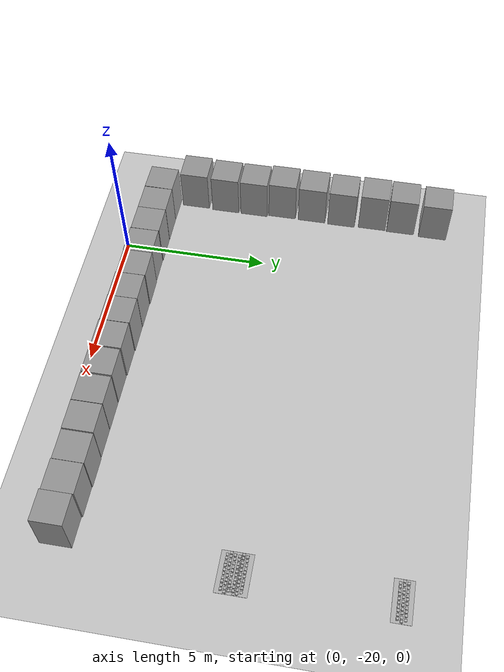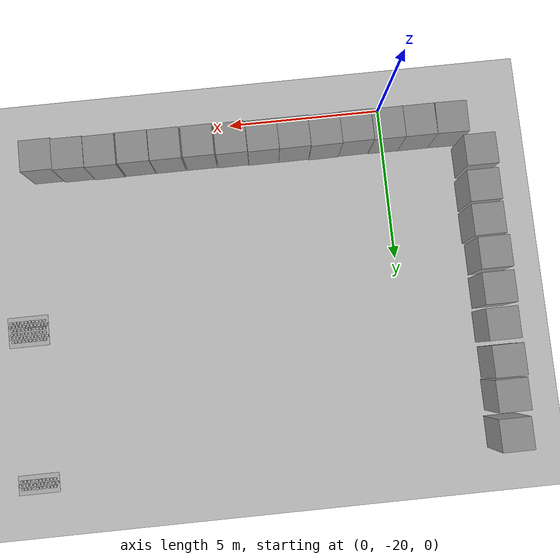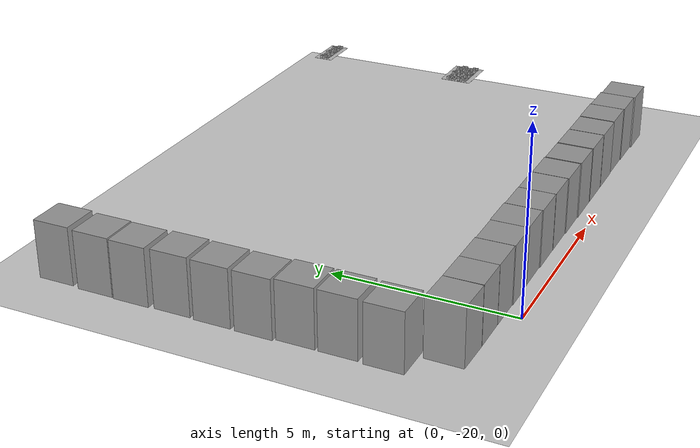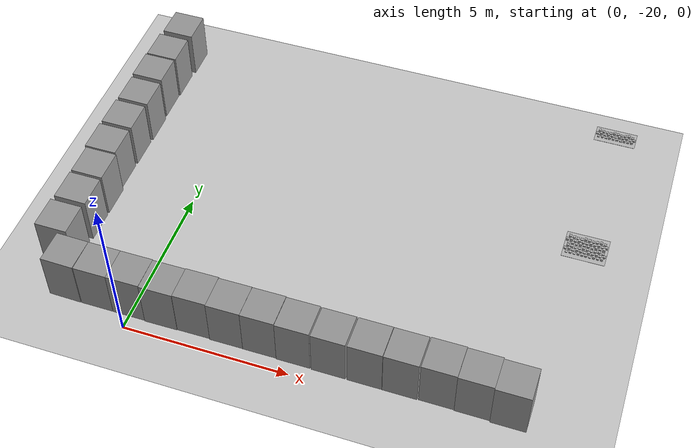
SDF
<sdf version="1.6">
 <world name="default">
  <model name="ground_plane">
   <static>1</static>
   <link name="link">
    <collision name="collision">
     <geometry><plane><normal>0 0 1</normal><size>100 100</size></plane></geometry>
     <surface><friction><ode><mu>100</mu><mu2>50</mu2></ode></friction></surface>
    </collision>
    <visual name="visual">
     <cast_shadows>0</cast_shadows>
     <geometry><plane><normal>0 0 1</normal><size>100 100</size></plane></geometry>
     <material>
      <script><uri>file://media/materials/scripts/gazebo.material</uri><name>Gazebo/Grey</name></script>
     </material>
    </visual>
   </link>
  </model>
  <model name="frc2016_roughterrain_clone_0_clone_clone_3_clone">
   <static>1</static>
   <link name="link">
    <visual name="platform">
     <pose>0 0 0.08269 0 -0 0</pose>
     <geometry><box><size>1.27 0.5969 0.003175</size></box></geometry>
    </visual>
    <collision name="platform">
     <pose>0 0 0.08269 0 -0 0</pose>
     <geometry><box><size>1.27 0.5969 0.003175</size></box></geometry>
    </collision>
    <visual name="row1_block1_sm">
     <pose>0.51435 0.1143 0.09698 0 -0 0</pose>
     <geometry><box><size>0.0762 0.0762 0.0254</size></box></geometry>
    </visual>
    <collision name="row1_block1_sm">
     <pose>0.51435 0.1143 0.09698 0 -0 0</pose>
     <geometry><box><size>0.0762 0.0762 0.0254</size></box></geometry>
    </collision>
    <visual name="row1_block2_lg">
     <pose>0.40005 0.1143 0.12238 0 -0 0</pose>
     <geometry><box><size>0.0762 0.0762 0.0762</size></box></geometry>
    </visual>
    <collision name="row1_block2_lg">
     <pose>0.40005 0.1143 0.12238 0 -0 0</pose>
     <geometry><box><size>0.0762 0.0762 0.0762</size></box></geometry>
    </collision>
    <visual name="row1_block3_md">
     <pose>0.28575 0.1143 0.10968 0 -0 0</pose>
     <geometry><box><size>0.0762 0.0762 0.0508</size></box></geometry>
    </visual>
    <collision name="row1_block3_md">
     <pose>0.28575 0.1143 0.10968 0 -0 0</pose>
     <geometry><box><size>0.0762 0.0762 0.0508</size></box></geometry>
    </collision>
    <visual name="row1_block4_sm">
     <pose>0.17145 0.1143 0.09698 0 -0 0</pose>
     <geometry><box><size>0.0762 0.0762 0.0254</size></box></geometry>
    </visual>
    <collision name="row1_block4_sm">
     <pose>0.17145 0.1143 0.09698 0 -0 0</pose>
     <geometry><box><size>0.0762 0.0762 0.0254</size></box></geometry>
    </collision>
    <visual name="row1_block5_md">
     <pose>0.05715 0.1143 0.10968 0 -0 0</pose>
     <geometry><box><size>0.0762 0.0762 0.0508</size></box></geometry>
    </visual>
    <collision name="row1_block5_md">
     <pose>0.05715 0.1143 0.10968 0 -0 0</pose>
     <geometry><box><size>0.0762 0.0762 0.0508</size></box></geometry>
    </collision>
    <visual name="row1_block6_lg">
     <pose>-0.05715 0.1143 0.12238 0 -0 0</pose>
     <geometry><box><size>0.0762 0.0762 0.0762</size></box></geometry>
    </visual>
    <collision name="row1_block6_lg">
     <pose>-0.05715 0.1143 0.12238 0 -0 0</pose>
     <geometry><box><size>0.0762 0.0762 0.0762</size></box></geometry>
    </collision>
    <visual name="row1_block7_sm">
     <pose>-0.17145 0.1143 0.09698 0 -0 0</pose>
     <geometry><box><size>0.0762 0.0762 0.0254</size></box></geometry>
    </visual>
    <collision name="row1_block7_sm">
     <pose>-0.17145 0.1143 0.09698 0 -0 0</pose>
     <geometry><box><size>0.0762 0.0762 0.0254</size></box></geometry>
    </collision>
    <visual name="row1_block8_sm">
     <pose>-0.28575 0.1143 0.09698 0 -0 0</pose>
     <geometry><box><size>0.0762 0.0762 0.0254</size></box></geometry>
    </visual>
    <collision name="row1_block8_sm">
     <pose>-0.28575 0.1143 0.09698 0 -0 0</pose>
     <geometry><box><size>0.0762 0.0762 0.0254</size></box></geometry>
    </collision>
    <visual name="row1_block9_md">
     <pose>-0.40005 0.1143 0.10968 0 -0 0</pose>
     <geometry><box><size>0.0762 0.0762 0.0508</size></box></geometry>
    </visual>
    <collision name="row1_block9_md">
     <pose>-0.40005 0.1143 0.10968 0 -0 0</pose>
     <geometry><box><size>0.0762 0.0762 0.0508</size></box></geometry>
    </collision>
    <visual name="row1_block10_lg">
     <pose>-0.51435 0.1143 0.12238 0 -0 0</pose>
     <geometry><box><size>0.0762 0.0762 0.0762</size></box></geometry>
    </visual>
    <collision name="row1_block10_lg">
     <pose>-0.51435 0.1143 0.12238 0 -0 0</pose>
     <geometry><box><size>0.0762 0.0762 0.0762</size></box></geometry>
    </collision>
    <visual name="row2_block1_md">
     <pose>0.5715 0 0.10968 0 -0 0</pose>
     <geometry><box><size>0.0762 0.0762 0.0508</size></box></geometry>
    </visual>
    <collision name="row2_block1_md">
     <pose>0.5715 0 0.10968 0 -0 0</pose>
     <geometry><box><size>0.0762 0.0762 0.0508</size></box></geometry>
    </collision>
    <visual name="row2_block2_sm">
     <pose>0.4572 0 0.09698 0 -0 0</pose>
     <geometry><box><size>0.0762 0.0762 0.0254</size></box></geometry>
    </visual>
    <collision name="row2_block2_sm">
     <pose>0.4572 0 0.09698 0 -0 0</pose>
     <geometry><box><size>0.0762 0.0762 0.0254</size></box></geometry>
    </collision>
    <visual name="row2_block3_lg">
     <pose>0.3429 0 0.12238 0 -0 0</pose>
     <geometry><box><size>0.0762 0.0762 0.0762</size></box></geometry>
    </visual>
    <collision name="row2_block3_lg">
     <pose>0.3429 0 0.12238 0 -0 0</pose>
     <geometry><box><size>0.0762 0.0762 0.0762</size></box></geometry>
    </collision>
    <visual name="row2_block4_md">
     <pose>0.2286 0 0.10968 0 -0 0</pose>
     <geometry><box><size>0.0762 0.0762 0.0508</size></box></geometry>
    </visual>
    <collision name="row2_block4_md">
     <pose>0.2286 0 0.10968 0 -0 0</pose>
     <geometry><box><size>0.0762 0.0762 0.0508</size></box></geometry>
    </collision>
    <visual name="row2_block5_lg">
     <pose>0.1143 0 0.12238 0 -0 0</pose>
     <geometry><box><size>0.0762 0.0762 0.0762</size></box></geometry>
    </visual>
    <collision name="row2_block5_lg">
     <pose>0.1143 0 0.12238 0 -0 0</pose>
     <geometry><box><size>0.0762 0.0762 0.0762</size></box></geometry>
    </collision>
    <visual name="row2_block6_sm">
     <pose>0 0 0.09698 0 -0 0</pose>
     <geometry><box><size>0.0762 0.0762 0.0254</size></box></geometry>
    </visual>
    <collision name="row2_block6_sm">
     <pose>0 0 0.09698 0 -0 0</pose>
     <geometry><box><size>0.0762 0.0762 0.0254</size></box></geometry>
    </collision>
    <visual name="row2_block7_md">
     <pose>-0.1143 0 0.10968 0 -0 0</pose>
     <geometry><box><size>0.0762 0.0762 0.0508</size></box></geometry>
    </visual>
    <collision name="row2_block7_md">
     <pose>-0.1143 0 0.10968 0 -0 0</pose>
     <geometry><box><size>0.0762 0.0762 0.0508</size></box></geometry>
    </collision>
    <visual name="row2_block8_lg">
     <pose>-0.2286 0 0.12238 0 -0 0</pose>
     <geometry><box><size>0.0762 0.0762 0.0762</size></box></geometry>
    </visual>
    <collision name="row2_block8_lg">
     <pose>-0.2286 0 0.12238 0 -0 0</pose>
     <geometry><box><size>0.0762 0.0762 0.0762</size></box></geometry>
    </collision>
    <visual name="row2_block9_sm">
     <pose>-0.3429 0 0.09698 0 -0 0</pose>
     <geometry><box><size>0.0762 0.0762 0.0254</size></box></geometry>
    </visual>
    <collision name="row2_block9_sm">
     <pose>-0.3429 0 0.09698 0 -0 0</pose>
     <geometry><box><size>0.0762 0.0762 0.0254</size></box></geometry>
    </collision>
    <visual name="row2_block10_lg">
     <pose>-0.4572 0 0.12238 0 -0 0</pose>
     <geometry><box><size>0.0762 0.0762 0.0762</size></box></geometry>
    </visual>
    <collision name="row2_block10_lg">
     <pose>-0.4572 0 0.12238 0 -0 0</pose>
     <geometry><box><size>0.0762 0.0762 0.0762</size></box></geometry>
    </collision>
    <visual name="row2_block11_md">
     <pose>-0.5715 0 0.10968 0 -0 0</pose>
     <geometry><box><size>0.0762 0.0762 0.0508</size></box></geometry>
    </visual>
    <collision name="row2_block11_md">
     <pose>-0.5715 0 0.10968 0 -0 0</pose>
     <geometry><box><size>0.0762 0.0762 0.0508</size></box></geometry>
    </collision>
    <visual name="row3_block1_lg">
     <pose>0.51435 -0.1143 0.12238 0 -0 0</pose>
     <geometry><box><size>0.0762 0.0762 0.0762</size></box></geometry>
    </visual>
    <collision name="row3_block1_lg">
     <pose>0.51435 -0.1143 0.12238 0 -0 0</pose>
     <geometry><box><size>0.0762 0.0762 0.0762</size></box></geometry>
    </collision>
    <visual name="row3_block2_md">
     <pose>0.40005 -0.1143 0.10968 0 -0 0</pose>
     <geometry><box><size>0.0762 0.0762 0.0508</size></box></geometry>
    </visual>
    <collision name="row3_block2_md">
     <pose>0.40005 -0.1143 0.10968 0 -0 0</pose>
     <geometry><box><size>0.0762 0.0762 0.0508</size></box></geometry>
    </collision>
    <visual name="row3_block3_lg">
     <pose>0.28575 -0.1143 0.12238 0 -0 0</pose>
     <geometry><box><size>0.0762 0.0762 0.0762</size></box></geometry>
    </visual>
    <collision name="row3_block3_lg">
     <pose>0.28575 -0.1143 0.12238 0 -0 0</pose>
     <geometry><box><size>0.0762 0.0762 0.0762</size></box></geometry>
    </collision>
    <visual name="row3_block4_sm">
     <pose>0.17145 -0.1143 0.09698 0 -0 0</pose>
     <geometry><box><size>0.0762 0.0762 0.0254</size></box></geometry>
    </visual>
    <collision name="row3_block4_sm">
     <pose>0.17145 -0.1143 0.09698 0 -0 0</pose>
     <geometry><box><size>0.0762 0.0762 0.0254</size></box></geometry>
    </collision>
    <visual name="row3_block5_md">
     <pose>0.05715 -0.1143 0.10968 0 -0 0</pose>
     <geometry><box><size>0.0762 0.0762 0.0508</size></box></geometry>
    </visual>
    <collision name="row3_block5_md">
     <pose>0.05715 -0.1143 0.10968 0 -0 0</pose>
     <geometry><box><size>0.0762 0.0762 0.0508</size></box></geometry>
    </collision>
    <visual name="row3_block6_md">
     <pose>-0.05715 -0.1143 0.10968 0 -0 0</pose>
     <geometry><box><size>0.0762 0.0762 0.0508</size></box></geometry>
    </visual>
    <collision name="row3_block6_md">
     <pose>-0.05715 -0.1143 0.10968 0 -0 0</pose>
     <geometry><box><size>0.0762 0.0762 0.0508</size></box></geometry>
    </collision>
    <visual name="row3_block7_lg">
     <pose>-0.17145 -0.1143 0.12238 0 -0 0</pose>
     <geometry><box><size>0.0762 0.0762 0.0762</size></box></geometry>
    </visual>
    <collision name="row3_block7_lg">
     <pose>-0.17145 -0.1143 0.12238 0 -0 0</pose>
     <geometry><box><size>0.0762 0.0762 0.0762</size></box></geometry>
    </collision>
    <visual name="row3_block8_sm">
     <pose>-0.28575 -0.1143 0.09698 0 -0 0</pose>
     <geometry><box><size>0.0762 0.0762 0.0254</size></box></geometry>
    </visual>
    <collision name="row3_block8_sm">
     <pose>-0.28575 -0.1143 0.09698 0 -0 0</pose>
     <geometry><box><size>0.0762 0.0762 0.0254</size></box></geometry>
    </collision>
    <visual name="row3_block9_md">
     <pose>-0.40005 -0.1143 0.10968 0 -0 0</pose>
     <geometry><box><size>0.0762 0.0762 0.0508</size></box></geometry>
    </visual>
    <collision name="row3_block9_md">
     <pose>-0.40005 -0.1143 0.10968 0 -0 0</pose>
     <geometry><box><size>0.0762 0.0762 0.0508</size></box></geometry>
    </collision>
    <visual name="row3_block10_sm">
     <pose>-0.51435 -0.1143 0.09698 0 -0 0</pose>
     <geometry><box><size>0.0762 0.0762 0.0254</size></box></geometry>
    </visual>
    <collision name="row3_block10_sm">
     <pose>-0.51435 -0.1143 0.09698 0 -0 0</pose>
     <geometry><box><size>0.0762 0.0762 0.0254</size></box></geometry>
    </collision>
   </link>
   <pose>11.9081 -9.01822 0.826533 0 -0 0</pose>
  </model>
  <model name="frc2016_roughterrain_clone_0_clone_clone_3_clone_1_clone_0_clone_clone_2_clone_clone_1">
   <static>1</static>
   <link name="link">
    <visual name="platform">
     <pose>0 0 0.08269 0 -0 0</pose>
     <geometry><box><size>1.27 0.5969 0.003175</size></box></geometry>
    </visual>
    <collision name="platform">
     <pose>0 0 0.08269 0 -0 0</pose>
     <geometry><box><size>1.27 0.5969 0.003175</size></box></geometry>
    </collision>
    <visual name="row1_block1_sm">
     <pose>0.51435 0.1143 0.09698 0 -0 0</pose>
     <geometry><box><size>0.0762 0.0762 0.0254</size></box></geometry>
    </visual>
    <collision name="row1_block1_sm">
     <pose>0.51435 0.1143 0.09698 0 -0 0</pose>
     <geometry><box><size>0.0762 0.0762 0.0254</size></box></geometry>
    </collision>
    <visual name="row1_block2_lg">
     <pose>0.40005 0.1143 0.12238 0 -0 0</pose>
     <geometry><box><size>0.0762 0.0762 0.0762</size></box></geometry>
    </visual>
    <collision name="row1_block2_lg">
     <pose>0.40005 0.1143 0.12238 0 -0 0</pose>
     <geometry><box><size>0.0762 0.0762 0.0762</size></box></geometry>
    </collision>
    <visual name="row1_block3_md">
     <pose>0.28575 0.1143 0.10968 0 -0 0</pose>
     <geometry><box><size>0.0762 0.0762 0.0508</size></box></geometry>
    </visual>
    <collision name="row1_block3_md">
     <pose>0.28575 0.1143 0.10968 0 -0 0</pose>
     <geometry><box><size>0.0762 0.0762 0.0508</size></box></geometry>
    </collision>
    <visual name="row1_block4_sm">
     <pose>0.17145 0.1143 0.09698 0 -0 0</pose>
     <geometry><box><size>0.0762 0.0762 0.0254</size></box></geometry>
    </visual>
    <collision name="row1_block4_sm">
     <pose>0.17145 0.1143 0.09698 0 -0 0</pose>
     <geometry><box><size>0.0762 0.0762 0.0254</size></box></geometry>
    </collision>
    <visual name="row1_block5_md">
     <pose>0.05715 0.1143 0.10968 0 -0 0</pose>
     <geometry><box><size>0.0762 0.0762 0.0508</size></box></geometry>
    </visual>
    <collision name="row1_block5_md">
     <pose>0.05715 0.1143 0.10968 0 -0 0</pose>
     <geometry><box><size>0.0762 0.0762 0.0508</size></box></geometry>
    </collision>
    <visual name="row1_block6_lg">
     <pose>-0.05715 0.1143 0.12238 0 -0 0</pose>
     <geometry><box><size>0.0762 0.0762 0.0762</size></box></geometry>
    </visual>
    <collision name="row1_block6_lg">
     <pose>-0.05715 0.1143 0.12238 0 -0 0</pose>
     <geometry><box><size>0.0762 0.0762 0.0762</size></box></geometry>
    </collision>
    <visual name="row1_block7_sm">
     <pose>-0.17145 0.1143 0.09698 0 -0 0</pose>
     <geometry><box><size>0.0762 0.0762 0.0254</size></box></geometry>
    </visual>
    <collision name="row1_block7_sm">
     <pose>-0.17145 0.1143 0.09698 0 -0 0</pose>
     <geometry><box><size>0.0762 0.0762 0.0254</size></box></geometry>
    </collision>
    <visual name="row1_block8_sm">
     <pose>-0.28575 0.1143 0.09698 0 -0 0</pose>
     <geometry><box><size>0.0762 0.0762 0.0254</size></box></geometry>
    </visual>
    <collision name="row1_block8_sm">
     <pose>-0.28575 0.1143 0.09698 0 -0 0</pose>
     <geometry><box><size>0.0762 0.0762 0.0254</size></box></geometry>
    </collision>
    <visual name="row1_block9_md">
     <pose>-0.40005 0.1143 0.10968 0 -0 0</pose>
     <geometry><box><size>0.0762 0.0762 0.0508</size></box></geometry>
    </visual>
    <collision name="row1_block9_md">
     <pose>-0.40005 0.1143 0.10968 0 -0 0</pose>
     <geometry><box><size>0.0762 0.0762 0.0508</size></box></geometry>
    </collision>
    <visual name="row1_block10_lg">
     <pose>-0.51435 0.1143 0.12238 0 -0 0</pose>
     <geometry><box><size>0.0762 0.0762 0.0762</size></box></geometry>
    </visual>
    <collision name="row1_block10_lg">
     <pose>-0.51435 0.1143 0.12238 0 -0 0</pose>
     <geometry><box><size>0.0762 0.0762 0.0762</size></box></geometry>
    </collision>
    <visual name="row2_block1_md">
     <pose>0.5715 0 0.10968 0 -0 0</pose>
     <geometry><box><size>0.0762 0.0762 0.0508</size></box></geometry>
    </visual>
    <collision name="row2_block1_md">
     <pose>0.5715 0 0.10968 0 -0 0</pose>
     <geometry><box><size>0.0762 0.0762 0.0508</size></box></geometry>
    </collision>
    <visual name="row2_block2_sm">
     <pose>0.4572 0 0.09698 0 -0 0</pose>
     <geometry><box><size>0.0762 0.0762 0.0254</size></box></geometry>
    </visual>
    <collision name="row2_block2_sm">
     <pose>0.4572 0 0.09698 0 -0 0</pose>
     <geometry><box><size>0.0762 0.0762 0.0254</size></box></geometry>
    </collision>
    <visual name="row2_block3_lg">
     <pose>0.3429 0 0.12238 0 -0 0</pose>
     <geometry><box><size>0.0762 0.0762 0.0762</size></box></geometry>
    </visual>
    <collision name="row2_block3_lg">
     <pose>0.3429 0 0.12238 0 -0 0</pose>
     <geometry><box><size>0.0762 0.0762 0.0762</size></box></geometry>
    </collision>
    <visual name="row2_block4_md">
     <pose>0.2286 0 0.10968 0 -0 0</pose>
     <geometry><box><size>0.0762 0.0762 0.0508</size></box></geometry>
    </visual>
    <collision name="row2_block4_md">
     <pose>0.2286 0 0.10968 0 -0 0</pose>
     <geometry><box><size>0.0762 0.0762 0.0508</size></box></geometry>
    </collision>
    <visual name="row2_block5_lg">
     <pose>0.1143 0 0.12238 0 -0 0</pose>
     <geometry><box><size>0.0762 0.0762 0.0762</size></box></geometry>
    </visual>
    <collision name="row2_block5_lg">
     <pose>0.1143 0 0.12238 0 -0 0</pose>
     <geometry><box><size>0.0762 0.0762 0.0762</size></box></geometry>
    </collision>
    <visual name="row2_block6_sm">
     <pose>0 0 0.09698 0 -0 0</pose>
     <geometry><box><size>0.0762 0.0762 0.0254</size></box></geometry>
    </visual>
    <collision name="row2_block6_sm">
     <pose>0 0 0.09698 0 -0 0</pose>
     <geometry><box><size>0.0762 0.0762 0.0254</size></box></geometry>
    </collision>
    <visual name="row2_block7_md">
     <pose>-0.1143 0 0.10968 0 -0 0</pose>
     <geometry><box><size>0.0762 0.0762 0.0508</size></box></geometry>
    </visual>
    <collision name="row2_block7_md">
     <pose>-0.1143 0 0.10968 0 -0 0</pose>
     <geometry><box><size>0.0762 0.0762 0.0508</size></box></geometry>
    </collision>
    <visual name="row2_block8_lg">
     <pose>-0.2286 0 0.12238 0 -0 0</pose>
     <geometry><box><size>0.0762 0.0762 0.0762</size></box></geometry>
    </visual>
    <collision name="row2_block8_lg">
     <pose>-0.2286 0 0.12238 0 -0 0</pose>
     <geometry><box><size>0.0762 0.0762 0.0762</size></box></geometry>
    </collision>
    <visual name="row2_block9_sm">
     <pose>-0.3429 0 0.09698 0 -0 0</pose>
     <geometry><box><size>0.0762 0.0762 0.0254</size></box></geometry>
    </visual>
    <collision name="row2_block9_sm">
     <pose>-0.3429 0 0.09698 0 -0 0</pose>
     <geometry><box><size>0.0762 0.0762 0.0254</size></box></geometry>
    </collision>
    <visual name="row2_block10_lg">
     <pose>-0.4572 0 0.12238 0 -0 0</pose>
     <geometry><box><size>0.0762 0.0762 0.0762</size></box></geometry>
    </visual>
    <collision name="row2_block10_lg">
     <pose>-0.4572 0 0.12238 0 -0 0</pose>
     <geometry><box><size>0.0762 0.0762 0.0762</size></box></geometry>
    </collision>
    <visual name="row2_block11_md">
     <pose>-0.5715 0 0.10968 0 -0 0</pose>
     <geometry><box><size>0.0762 0.0762 0.0508</size></box></geometry>
    </visual>
    <collision name="row2_block11_md">
     <pose>-0.5715 0 0.10968 0 -0 0</pose>
     <geometry><box><size>0.0762 0.0762 0.0508</size></box></geometry>
    </collision>
    <visual name="row3_block1_lg">
     <pose>0.51435 -0.1143 0.12238 0 -0 0</pose>
     <geometry><box><size>0.0762 0.0762 0.0762</size></box></geometry>
    </visual>
    <collision name="row3_block1_lg">
     <pose>0.51435 -0.1143 0.12238 0 -0 0</pose>
     <geometry><box><size>0.0762 0.0762 0.0762</size></box></geometry>
    </collision>
    <visual name="row3_block2_md">
     <pose>0.40005 -0.1143 0.10968 0 -0 0</pose>
     <geometry><box><size>0.0762 0.0762 0.0508</size></box></geometry>
    </visual>
    <collision name="row3_block2_md">
     <pose>0.40005 -0.1143 0.10968 0 -0 0</pose>
     <geometry><box><size>0.0762 0.0762 0.0508</size></box></geometry>
    </collision>
    <visual name="row3_block3_lg">
     <pose>0.28575 -0.1143 0.12238 0 -0 0</pose>
     <geometry><box><size>0.0762 0.0762 0.0762</size></box></geometry>
    </visual>
    <collision name="row3_block3_lg">
     <pose>0.28575 -0.1143 0.12238 0 -0 0</pose>
     <geometry><box><size>0.0762 0.0762 0.0762</size></box></geometry>
    </collision>
    <visual name="row3_block4_sm">
     <pose>0.17145 -0.1143 0.09698 0 -0 0</pose>
     <geometry><box><size>0.0762 0.0762 0.0254</size></box></geometry>
    </visual>
    <collision name="row3_block4_sm">
     <pose>0.17145 -0.1143 0.09698 0 -0 0</pose>
     <geometry><box><size>0.0762 0.0762 0.0254</size></box></geometry>
    </collision>
    <visual name="row3_block5_md">
     <pose>0.05715 -0.1143 0.10968 0 -0 0</pose>
     <geometry><box><size>0.0762 0.0762 0.0508</size></box></geometry>
    </visual>
    <collision name="row3_block5_md">
     <pose>0.05715 -0.1143 0.10968 0 -0 0</pose>
     <geometry><box><size>0.0762 0.0762 0.0508</size></box></geometry>
    </collision>
    <visual name="row3_block6_md">
     <pose>-0.05715 -0.1143 0.10968 0 -0 0</pose>
     <geometry><box><size>0.0762 0.0762 0.0508</size></box></geometry>
    </visual>
    <collision name="row3_block6_md">
     <pose>-0.05715 -0.1143 0.10968 0 -0 0</pose>
     <geometry><box><size>0.0762 0.0762 0.0508</size></box></geometry>
    </collision>
    <visual name="row3_block7_lg">
     <pose>-0.17145 -0.1143 0.12238 0 -0 0</pose>
     <geometry><box><size>0.0762 0.0762 0.0762</size></box></geometry>
    </visual>
    <collision name="row3_block7_lg">
     <pose>-0.17145 -0.1143 0.12238 0 -0 0</pose>
     <geometry><box><size>0.0762 0.0762 0.0762</size></box></geometry>
    </collision>
    <visual name="row3_block8_sm">
     <pose>-0.28575 -0.1143 0.09698 0 -0 0</pose>
     <geometry><box><size>0.0762 0.0762 0.0254</size></box></geometry>
    </visual>
    <collision name="row3_block8_sm">
     <pose>-0.28575 -0.1143 0.09698 0 -0 0</pose>
     <geometry><box><size>0.0762 0.0762 0.0254</size></box></geometry>
    </collision>
    <visual name="row3_block9_md">
     <pose>-0.40005 -0.1143 0.10968 0 -0 0</pose>
     <geometry><box><size>0.0762 0.0762 0.0508</size></box></geometry>
    </visual>
    <collision name="row3_block9_md">
     <pose>-0.40005 -0.1143 0.10968 0 -0 0</pose>
     <geometry><box><size>0.0762 0.0762 0.0508</size></box></geometry>
    </collision>
    <visual name="row3_block10_sm">
     <pose>-0.51435 -0.1143 0.09698 0 -0 0</pose>
     <geometry><box><size>0.0762 0.0762 0.0254</size></box></geometry>
    </visual>
    <collision name="row3_block10_sm">
     <pose>-0.51435 -0.1143 0.09698 0 -0 0</pose>
     <geometry><box><size>0.0762 0.0762 0.0254</size></box></geometry>
    </collision>
   </link>
   <pose>11.9075 -13.555 0.826533 0 -0 0</pose>
  </model>
  <model name="frc2016_roughterrain_clone_0_clone_clone_3_clone_1_clone_0_clone_clone_2_clone_clone_1_clone">
   <static>1</static>
   <link name="link">
    <visual name="platform">
     <pose>0 0 0.08269 0 -0 0</pose>
     <geometry><box><size>1.27 0.5969 0.003175</size></box></geometry>
    </visual>
    <collision name="platform">
     <pose>0 0 0.08269 0 -0 0</pose>
     <geometry><box><size>1.27 0.5969 0.003175</size></box></geometry>
    </collision>
    <visual name="row1_block1_sm">
     <pose>0.51435 0.1143 0.09698 0 -0 0</pose>
     <geometry><box><size>0.0762 0.0762 0.0254</size></box></geometry>
    </visual>
    <collision name="row1_block1_sm">
     <pose>0.51435 0.1143 0.09698 0 -0 0</pose>
     <geometry><box><size>0.0762 0.0762 0.0254</size></box></geometry>
    </collision>
    <visual name="row1_block2_lg">
     <pose>0.40005 0.1143 0.12238 0 -0 0</pose>
     <geometry><box><size>0.0762 0.0762 0.0762</size></box></geometry>
    </visual>
    <collision name="row1_block2_lg">
     <pose>0.40005 0.1143 0.12238 0 -0 0</pose>
     <geometry><box><size>0.0762 0.0762 0.0762</size></box></geometry>
    </collision>
    <visual name="row1_block3_md">
     <pose>0.28575 0.1143 0.10968 0 -0 0</pose>
     <geometry><box><size>0.0762 0.0762 0.0508</size></box></geometry>
    </visual>
    <collision name="row1_block3_md">
     <pose>0.28575 0.1143 0.10968 0 -0 0</pose>
     <geometry><box><size>0.0762 0.0762 0.0508</size></box></geometry>
    </collision>
    <visual name="row1_block4_sm">
     <pose>0.17145 0.1143 0.09698 0 -0 0</pose>
     <geometry><box><size>0.0762 0.0762 0.0254</size></box></geometry>
    </visual>
    <collision name="row1_block4_sm">
     <pose>0.17145 0.1143 0.09698 0 -0 0</pose>
     <geometry><box><size>0.0762 0.0762 0.0254</size></box></geometry>
    </collision>
    <visual name="row1_block5_md">
     <pose>0.05715 0.1143 0.10968 0 -0 0</pose>
     <geometry><box><size>0.0762 0.0762 0.0508</size></box></geometry>
    </visual>
    <collision name="row1_block5_md">
     <pose>0.05715 0.1143 0.10968 0 -0 0</pose>
     <geometry><box><size>0.0762 0.0762 0.0508</size></box></geometry>
    </collision>
    <visual name="row1_block6_lg">
     <pose>-0.05715 0.1143 0.12238 0 -0 0</pose>
     <geometry><box><size>0.0762 0.0762 0.0762</size></box></geometry>
    </visual>
    <collision name="row1_block6_lg">
     <pose>-0.05715 0.1143 0.12238 0 -0 0</pose>
     <geometry><box><size>0.0762 0.0762 0.0762</size></box></geometry>
    </collision>
    <visual name="row1_block7_sm">
     <pose>-0.17145 0.1143 0.09698 0 -0 0</pose>
     <geometry><box><size>0.0762 0.0762 0.0254</size></box></geometry>
    </visual>
    <collision name="row1_block7_sm">
     <pose>-0.17145 0.1143 0.09698 0 -0 0</pose>
     <geometry><box><size>0.0762 0.0762 0.0254</size></box></geometry>
    </collision>
    <visual name="row1_block8_sm">
     <pose>-0.28575 0.1143 0.09698 0 -0 0</pose>
     <geometry><box><size>0.0762 0.0762 0.0254</size></box></geometry>
    </visual>
    <collision name="row1_block8_sm">
     <pose>-0.28575 0.1143 0.09698 0 -0 0</pose>
     <geometry><box><size>0.0762 0.0762 0.0254</size></box></geometry>
    </collision>
    <visual name="row1_block9_md">
     <pose>-0.40005 0.1143 0.10968 0 -0 0</pose>
     <geometry><box><size>0.0762 0.0762 0.0508</size></box></geometry>
    </visual>
    <collision name="row1_block9_md">
     <pose>-0.40005 0.1143 0.10968 0 -0 0</pose>
     <geometry><box><size>0.0762 0.0762 0.0508</size></box></geometry>
    </collision>
    <visual name="row1_block10_lg">
     <pose>-0.51435 0.1143 0.12238 0 -0 0</pose>
     <geometry><box><size>0.0762 0.0762 0.0762</size></box></geometry>
    </visual>
    <collision name="row1_block10_lg">
     <pose>-0.51435 0.1143 0.12238 0 -0 0</pose>
     <geometry><box><size>0.0762 0.0762 0.0762</size></box></geometry>
    </collision>
    <visual name="row2_block1_md">
     <pose>0.5715 0 0.10968 0 -0 0</pose>
     <geometry><box><size>0.0762 0.0762 0.0508</size></box></geometry>
    </visual>
    <collision name="row2_block1_md">
     <pose>0.5715 0 0.10968 0 -0 0</pose>
     <geometry><box><size>0.0762 0.0762 0.0508</size></box></geometry>
    </collision>
    <visual name="row2_block2_sm">
     <pose>0.4572 0 0.09698 0 -0 0</pose>
     <geometry><box><size>0.0762 0.0762 0.0254</size></box></geometry>
    </visual>
    <collision name="row2_block2_sm">
     <pose>0.4572 0 0.09698 0 -0 0</pose>
     <geometry><box><size>0.0762 0.0762 0.0254</size></box></geometry>
    </collision>
    <visual name="row2_block3_lg">
     <pose>0.3429 0 0.12238 0 -0 0</pose>
     <geometry><box><size>0.0762 0.0762 0.0762</size></box></geometry>
    </visual>
    <collision name="row2_block3_lg">
     <pose>0.3429 0 0.12238 0 -0 0</pose>
     <geometry><box><size>0.0762 0.0762 0.0762</size></box></geometry>
    </collision>
    <visual name="row2_block4_md">
     <pose>0.2286 0 0.10968 0 -0 0</pose>
     <geometry><box><size>0.0762 0.0762 0.0508</size></box></geometry>
    </visual>
    <collision name="row2_block4_md">
     <pose>0.2286 0 0.10968 0 -0 0</pose>
     <geometry><box><size>0.0762 0.0762 0.0508</size></box></geometry>
    </collision>
    <visual name="row2_block5_lg">
     <pose>0.1143 0 0.12238 0 -0 0</pose>
     <geometry><box><size>0.0762 0.0762 0.0762</size></box></geometry>
    </visual>
    <collision name="row2_block5_lg">
     <pose>0.1143 0 0.12238 0 -0 0</pose>
     <geometry><box><size>0.0762 0.0762 0.0762</size></box></geometry>
    </collision>
    <visual name="row2_block6_sm">
     <pose>0 0 0.09698 0 -0 0</pose>
     <geometry><box><size>0.0762 0.0762 0.0254</size></box></geometry>
    </visual>
    <collision name="row2_block6_sm">
     <pose>0 0 0.09698 0 -0 0</pose>
     <geometry><box><size>0.0762 0.0762 0.0254</size></box></geometry>
    </collision>
    <visual name="row2_block7_md">
     <pose>-0.1143 0 0.10968 0 -0 0</pose>
     <geometry><box><size>0.0762 0.0762 0.0508</size></box></geometry>
    </visual>
    <collision name="row2_block7_md">
     <pose>-0.1143 0 0.10968 0 -0 0</pose>
     <geometry><box><size>0.0762 0.0762 0.0508</size></box></geometry>
    </collision>
    <visual name="row2_block8_lg">
     <pose>-0.2286 0 0.12238 0 -0 0</pose>
     <geometry><box><size>0.0762 0.0762 0.0762</size></box></geometry>
    </visual>
    <collision name="row2_block8_lg">
     <pose>-0.2286 0 0.12238 0 -0 0</pose>
     <geometry><box><size>0.0762 0.0762 0.0762</size></box></geometry>
    </collision>
    <visual name="row2_block9_sm">
     <pose>-0.3429 0 0.09698 0 -0 0</pose>
     <geometry><box><size>0.0762 0.0762 0.0254</size></box></geometry>
    </visual>
    <collision name="row2_block9_sm">
     <pose>-0.3429 0 0.09698 0 -0 0</pose>
     <geometry><box><size>0.0762 0.0762 0.0254</size></box></geometry>
    </collision>
    <visual name="row2_block10_lg">
     <pose>-0.4572 0 0.12238 0 -0 0</pose>
     <geometry><box><size>0.0762 0.0762 0.0762</size></box></geometry>
    </visual>
    <collision name="row2_block10_lg">
     <pose>-0.4572 0 0.12238 0 -0 0</pose>
     <geometry><box><size>0.0762 0.0762 0.0762</size></box></geometry>
    </collision>
    <visual name="row2_block11_md">
     <pose>-0.5715 0 0.10968 0 -0 0</pose>
     <geometry><box><size>0.0762 0.0762 0.0508</size></box></geometry>
    </visual>
    <collision name="row2_block11_md">
     <pose>-0.5715 0 0.10968 0 -0 0</pose>
     <geometry><box><size>0.0762 0.0762 0.0508</size></box></geometry>
    </collision>
    <visual name="row3_block1_lg">
     <pose>0.51435 -0.1143 0.12238 0 -0 0</pose>
     <geometry><box><size>0.0762 0.0762 0.0762</size></box></geometry>
    </visual>
    <collision name="row3_block1_lg">
     <pose>0.51435 -0.1143 0.12238 0 -0 0</pose>
     <geometry><box><size>0.0762 0.0762 0.0762</size></box></geometry>
    </collision>
    <visual name="row3_block2_md">
     <pose>0.40005 -0.1143 0.10968 0 -0 0</pose>
     <geometry><box><size>0.0762 0.0762 0.0508</size></box></geometry>
    </visual>
    <collision name="row3_block2_md">
     <pose>0.40005 -0.1143 0.10968 0 -0 0</pose>
     <geometry><box><size>0.0762 0.0762 0.0508</size></box></geometry>
    </collision>
    <visual name="row3_block3_lg">
     <pose>0.28575 -0.1143 0.12238 0 -0 0</pose>
     <geometry><box><size>0.0762 0.0762 0.0762</size></box></geometry>
    </visual>
    <collision name="row3_block3_lg">
     <pose>0.28575 -0.1143 0.12238 0 -0 0</pose>
     <geometry><box><size>0.0762 0.0762 0.0762</size></box></geometry>
    </collision>
    <visual name="row3_block4_sm">
     <pose>0.17145 -0.1143 0.09698 0 -0 0</pose>
     <geometry><box><size>0.0762 0.0762 0.0254</size></box></geometry>
    </visual>
    <collision name="row3_block4_sm">
     <pose>0.17145 -0.1143 0.09698 0 -0 0</pose>
     <geometry><box><size>0.0762 0.0762 0.0254</size></box></geometry>
    </collision>
    <visual name="row3_block5_md">
     <pose>0.05715 -0.1143 0.10968 0 -0 0</pose>
     <geometry><box><size>0.0762 0.0762 0.0508</size></box></geometry>
    </visual>
    <collision name="row3_block5_md">
     <pose>0.05715 -0.1143 0.10968 0 -0 0</pose>
     <geometry><box><size>0.0762 0.0762 0.0508</size></box></geometry>
    </collision>
    <visual name="row3_block6_md">
     <pose>-0.05715 -0.1143 0.10968 0 -0 0</pose>
     <geometry><box><size>0.0762 0.0762 0.0508</size></box></geometry>
    </visual>
    <collision name="row3_block6_md">
     <pose>-0.05715 -0.1143 0.10968 0 -0 0</pose>
     <geometry><box><size>0.0762 0.0762 0.0508</size></box></geometry>
    </collision>
    <visual name="row3_block7_lg">
     <pose>-0.17145 -0.1143 0.12238 0 -0 0</pose>
     <geometry><box><size>0.0762 0.0762 0.0762</size></box></geometry>
    </visual>
    <collision name="row3_block7_lg">
     <pose>-0.17145 -0.1143 0.12238 0 -0 0</pose>
     <geometry><box><size>0.0762 0.0762 0.0762</size></box></geometry>
    </collision>
    <visual name="row3_block8_sm">
     <pose>-0.28575 -0.1143 0.09698 0 -0 0</pose>
     <geometry><box><size>0.0762 0.0762 0.0254</size></box></geometry>
    </visual>
    <collision name="row3_block8_sm">
     <pose>-0.28575 -0.1143 0.09698 0 -0 0</pose>
     <geometry><box><size>0.0762 0.0762 0.0254</size></box></geometry>
    </collision>
    <visual name="row3_block9_md">
     <pose>-0.40005 -0.1143 0.10968 0 -0 0</pose>
     <geometry><box><size>0.0762 0.0762 0.0508</size></box></geometry>
    </visual>
    <collision name="row3_block9_md">
     <pose>-0.40005 -0.1143 0.10968 0 -0 0</pose>
     <geometry><box><size>0.0762 0.0762 0.0508</size></box></geometry>
    </collision>
    <visual name="row3_block10_sm">
     <pose>-0.51435 -0.1143 0.09698 0 -0 0</pose>
     <geometry><box><size>0.0762 0.0762 0.0254</size></box></geometry>
    </visual>
    <collision name="row3_block10_sm">
     <pose>-0.51435 -0.1143 0.09698 0 -0 0</pose>
     <geometry><box><size>0.0762 0.0762 0.0254</size></box></geometry>
    </collision>
   </link>
   <pose>11.907 -13.9116 0.826533 0 -0 0</pose>
  </model>
  <model name="unit_box_clone_10_clone_13_clone_0_clone_14">
   <pose>11.1281 -19.1793 0.79937 0 0 -0.000397</pose>
   <link name="link">
    <inertial>
     <mass>1</mass>
     <inertia>
      <ixx>0.166667</ixx>
      <ixy>0</ixy>
      <ixz>0</ixz>
      <iyy>0.166667</iyy>
      <iyz>0</iyz>
      <izz>0.166667</izz>
     </inertia>
    </inertial>
    <collision name="collision"><geometry><box><size>1 1 1.59874</size></box></geometry></collision>
    <visual name="visual">
     <geometry><box><size>1 1 1.59874</size></box></geometry>
     <material>
      <script><name>Gazebo/Grey</name><uri>file://media/materials/scripts/gazebo.material</uri></script>
     </material>
    </visual>
   </link>
  </model>
  <model name="unit_box_clone_10_clone_13_clone_0_clone_15">
   <pose>10.1281 -19.1397 0.79937 -0 -0 -0.000408</pose>
   <link name="link">
    <inertial>
     <mass>1</mass>
     <inertia>
      <ixx>0.166667</ixx>
      <ixy>0</ixy>
      <ixz>0</ixz>
      <iyy>0.166667</iyy>
      <iyz>0</iyz>
      <izz>0.166667</izz>
     </inertia>
    </inertial>
    <collision name="collision"><geometry><box><size>1 1 1.59874</size></box></geometry></collision>
    <visual name="visual">
     <geometry><box><size>1 1 1.59874</size></box></geometry>
     <material>
      <script><name>Gazebo/Grey</name><uri>file://media/materials/scripts/gazebo.material</uri></script>
     </material>
    </visual>
   </link>
  </model>
  <model name="unit_box_clone_10_clone_13_clone_0_clone_16">
   <pose>9.12384 -19.1206 0.799368 -5e-06 1e-06 2e-06</pose>
   <link name="link">
    <inertial>
     <mass>1</mass>
     <inertia>
      <ixx>0.166667</ixx>
      <ixy>0</ixy>
      <ixz>0</ixz>
      <iyy>0.166667</iyy>
      <iyz>0</iyz>
      <izz>0.166667</izz>
     </inertia>
    </inertial>
    <collision name="collision"><geometry><box><size>1 1 1.59874</size></box></geometry></collision>
    <visual name="visual">
     <geometry><box><size>1 1 1.59874</size></box></geometry>
     <material>
      <script><name>Gazebo/Grey</name><uri>file://media/materials/scripts/gazebo.material</uri></script>
     </material>
    </visual>
   </link>
  </model>
  <model name="unit_box_clone_10_clone_13_clone_0_clone_17">
   <pose>8.08967 -19.1326 0.799368 -5e-06 1e-06 2e-06</pose>
   <link name="link">
    <inertial>
     <mass>1</mass>
     <inertia>
      <ixx>0.166667</ixx>
      <ixy>0</ixy>
      <ixz>0</ixz>
      <iyy>0.166667</iyy>
      <iyz>0</iyz>
      <izz>0.166667</izz>
     </inertia>
    </inertial>
    <collision name="collision"><geometry><box><size>1 1 1.59874</size></box></geometry></collision>
    <visual name="visual">
     <geometry><box><size>1 1 1.59874</size></box></geometry>
     <material>
      <script><name>Gazebo/Grey</name><uri>file://media/materials/scripts/gazebo.material</uri></script>
     </material>
    </visual>
   </link>
  </model>
  <model name="unit_box_clone_10_clone_13_clone_0_clone_18">
   <pose>7.07786 -19.1292 0.799368 -5e-06 1e-06 2e-06</pose>
   <link name="link">
    <inertial>
     <mass>1</mass>
     <inertia>
      <ixx>0.166667</ixx>
      <ixy>0</ixy>
      <ixz>0</ixz>
      <iyy>0.166667</iyy>
      <iyz>0</iyz>
      <izz>0.166667</izz>
     </inertia>
    </inertial>
    <collision name="collision"><geometry><box><size>1 1 1.59874</size></box></geometry></collision>
    <visual name="visual">
     <geometry><box><size>1 1 1.59874</size></box></geometry>
     <material>
      <script><name>Gazebo/Grey</name><uri>file://media/materials/scripts/gazebo.material</uri></script>
     </material>
    </visual>
   </link>
  </model>
  <model name="unit_box_clone_10_clone_13_clone_0_clone_19">
   <pose>6.03395 -19.1265 0.799368 -5e-06 1e-06 2e-06</pose>
   <link name="link">
    <inertial>
     <mass>1</mass>
     <inertia>
      <ixx>0.166667</ixx>
      <ixy>0</ixy>
      <ixz>0</ixz>
      <iyy>0.166667</iyy>
      <iyz>0</iyz>
      <izz>0.166667</izz>
     </inertia>
    </inertial>
    <collision name="collision"><geometry><box><size>1 1 1.59874</size></box></geometry></collision>
    <visual name="visual">
     <geometry><box><size>1 1 1.59874</size></box></geometry>
     <material>
      <script><name>Gazebo/Grey</name><uri>file://media/materials/scripts/gazebo.material</uri></script>
     </material>
    </visual>
   </link>
  </model>
  <model name="unit_box_clone_10_clone_13_clone_0_clone_20">
   <pose>4.99604 -19.1105 0.79937 0 -0 0.003363</pose>
   <link name="link">
    <inertial>
     <mass>1</mass>
     <inertia>
      <ixx>0.166667</ixx>
      <ixy>0</ixy>
      <ixz>0</ixz>
      <iyy>0.166667</iyy>
      <iyz>0</iyz>
      <izz>0.166667</izz>
     </inertia>
    </inertial>
    <collision name="collision"><geometry><box><size>1 1 1.59874</size></box></geometry></collision>
    <visual name="visual">
     <geometry><box><size>1 1 1.59874</size></box></geometry>
     <material>
      <script><name>Gazebo/Grey</name><uri>file://media/materials/scripts/gazebo.material</uri></script>
     </material>
    </visual>
   </link>
  </model>
  <model name="unit_box_clone_10_clone_13_clone_0_clone_21">
   <pose>3.98714 -19.0947 0.79937 0 -0 0.004879</pose>
   <link name="link">
    <inertial>
     <mass>1</mass>
     <inertia>
      <ixx>0.166667</ixx>
      <ixy>0</ixy>
      <ixz>0</ixz>
      <iyy>0.166667</iyy>
      <iyz>0</iyz>
      <izz>0.166667</izz>
     </inertia>
    </inertial>
    <collision name="collision"><geometry><box><size>1 1 1.59874</size></box></geometry></collision>
    <visual name="visual">
     <geometry><box><size>1 1 1.59874</size></box></geometry>
     <material>
      <script><name>Gazebo/Grey</name><uri>file://media/materials/scripts/gazebo.material</uri></script>
     </material>
    </visual>
   </link>
  </model>
  <model name="unit_box_clone_10_clone_13_clone_0_clone_22">
   <pose>2.98569 -19.0927 0.79937 0 -0 0.005446</pose>
   <link name="link">
    <inertial>
     <mass>1</mass>
     <inertia>
      <ixx>0.166667</ixx>
      <ixy>0</ixy>
      <ixz>0</ixz>
      <iyy>0.166667</iyy>
      <iyz>0</iyz>
      <izz>0.166667</izz>
     </inertia>
    </inertial>
    <collision name="collision"><geometry><box><size>1 1 1.59874</size></box></geometry></collision>
    <visual name="visual">
     <geometry><box><size>1 1 1.59874</size></box></geometry>
     <material>
      <script><name>Gazebo/Grey</name><uri>file://media/materials/scripts/gazebo.material</uri></script>
     </material>
    </visual>
   </link>
  </model>
  <model name="unit_box_clone_10_clone_13_clone_0_clone_23">
   <pose>1.98465 -19.0753 0.799368 3e-06 -1e-06 0.006802</pose>
   <link name="link">
    <inertial>
     <mass>1</mass>
     <inertia>
      <ixx>0.166667</ixx>
      <ixy>0</ixy>
      <ixz>0</ixz>
      <iyy>0.166667</iyy>
      <iyz>0</iyz>
      <izz>0.166667</izz>
     </inertia>
    </inertial>
    <collision name="collision"><geometry><box><size>1 1 1.59874</size></box></geometry></collision>
    <visual name="visual">
     <geometry><box><size>1 1 1.59874</size></box></geometry>
     <material>
      <script><name>Gazebo/Grey</name><uri>file://media/materials/scripts/gazebo.material</uri></script>
     </material>
    </visual>
   </link>
  </model>
  <model name="unit_box_clone_10_clone_13_clone_0_clone_24">
   <pose>0.984482 -19.0956 0.79937 0 -0 0.007374</pose>
   <link name="link">
    <inertial>
     <mass>1</mass>
     <inertia>
      <ixx>0.166667</ixx>
      <ixy>0</ixy>
      <ixz>0</ixz>
      <iyy>0.166667</iyy>
      <iyz>0</iyz>
      <izz>0.166667</izz>
     </inertia>
    </inertial>
    <collision name="collision"><geometry><box><size>1 1 1.59874</size></box></geometry></collision>
    <visual name="visual">
     <geometry><box><size>1 1 1.59874</size></box></geometry>
     <material>
      <script><name>Gazebo/Grey</name><uri>file://media/materials/scripts/gazebo.material</uri></script>
     </material>
    </visual>
   </link>
  </model>
  <model name="unit_box_clone_10_clone_13_clone_0_clone_25">
   <pose>-0.018322 -19.0818 0.799368 -1e-06 -5e-06 0.001951</pose>
   <link name="link">
    <inertial>
     <mass>1</mass>
     <inertia>
      <ixx>0.166667</ixx>
      <ixy>0</ixy>
      <ixz>0</ixz>
      <iyy>0.166667</iyy>
      <iyz>0</iyz>
      <izz>0.166667</izz>
     </inertia>
    </inertial>
    <collision name="collision"><geometry><box><size>1 1 1.59874</size></box></geometry></collision>
    <visual name="visual">
     <geometry><box><size>1 1 1.59874</size></box></geometry>
     <material>
      <script><name>Gazebo/Grey</name><uri>file://media/materials/scripts/gazebo.material</uri></script>
     </material>
    </visual>
   </link>
  </model>
  <model name="unit_box_clone_10_clone_13_clone_0_clone_26">
   <pose>-1.01833 -19.0804 0.799368 -1e-06 -5e-06 0.001951</pose>
   <link name="link">
    <inertial>
     <mass>1</mass>
     <inertia>
      <ixx>0.166667</ixx>
      <ixy>0</ixy>
      <ixz>0</ixz>
      <iyy>0.166667</iyy>
      <iyz>0</iyz>
      <izz>0.166667</izz>
     </inertia>
    </inertial>
    <collision name="collision"><geometry><box><size>1 1 1.59874</size></box></geometry></collision>
    <visual name="visual">
     <geometry><box><size>1 1 1.59874</size></box></geometry>
     <material>
      <script><name>Gazebo/Grey</name><uri>file://media/materials/scripts/gazebo.material</uri></script>
     </material>
    </visual>
   </link>
  </model>
  <model name="unit_box_clone_10_clone_13_clone_0_clone_27">
   <pose>-2.02875 -19.0742 0.79937 0 0 -0.017028</pose>
   <link name="link">
    <inertial>
     <mass>1</mass>
     <inertia>
      <ixx>0.166667</ixx>
      <ixy>0</ixy>
      <ixz>0</ixz>
      <iyy>0.166667</iyy>
      <iyz>0</iyz>
      <izz>0.166667</izz>
     </inertia>
    </inertial>
    <collision name="collision"><geometry><box><size>1 1 1.59874</size></box></geometry></collision>
    <visual name="visual">
     <geometry><box><size>1 1 1.59874</size></box></geometry>
     <material>
      <script><name>Gazebo/Grey</name><uri>file://media/materials/scripts/gazebo.material</uri></script>
     </material>
    </visual>
   </link>
  </model>
  <model name="unit_box_clone_clone_2_clone_5">
   <pose>-2.72954 -9.09747 0.799366 -4e-06 3e-06 2e-06</pose>
   <link name="link">
    <inertial>
     <mass>1</mass>
     <inertia>
      <ixx>0.166667</ixx>
      <ixy>0</ixy>
      <ixz>0</ixz>
      <iyy>0.166667</iyy>
      <iyz>0</iyz>
      <izz>0.166667</izz>
     </inertia>
    </inertial>
    <collision name="collision"><geometry><box><size>1 1 1.59874</size></box></geometry></collision>
    <visual name="visual">
     <geometry><box><size>1 1 1.59874</size></box></geometry>
     <material>
      <script><name>Gazebo/Grey</name><uri>file://media/materials/scripts/gazebo.material</uri></script>
     </material>
    </visual>
   </link>
  </model>
  <model name="unit_box_clone_clone_2_clone_6">
   <pose>-2.78356 -10.2781 0.799366 -4e-06 3e-06 2e-06</pose>
   <link name="link">
    <inertial>
     <mass>1</mass>
     <inertia>
      <ixx>0.166667</ixx>
      <ixy>0</ixy>
      <ixz>0</ixz>
      <iyy>0.166667</iyy>
      <iyz>0</iyz>
      <izz>0.166667</izz>
     </inertia>
    </inertial>
    <collision name="collision"><geometry><box><size>1 1 1.59874</size></box></geometry></collision>
    <visual name="visual">
     <geometry><box><size>1 1 1.59874</size></box></geometry>
     <material>
      <script><name>Gazebo/Grey</name><uri>file://media/materials/scripts/gazebo.material</uri></script>
     </material>
    </visual>
   </link>
  </model>
  <model name="unit_box_clone_clone_2_clone_7">
   <pose>-2.81137 -11.3283 0.799366 -4e-06 3e-06 2e-06</pose>
   <link name="link">
    <inertial>
     <mass>1</mass>
     <inertia>
      <ixx>0.166667</ixx>
      <ixy>0</ixy>
      <ixz>0</ixz>
      <iyy>0.166667</iyy>
      <iyz>0</iyz>
      <izz>0.166667</izz>
     </inertia>
    </inertial>
    <collision name="collision"><geometry><box><size>1 1 1.59874</size></box></geometry></collision>
    <visual name="visual">
     <geometry><box><size>1 1 1.59874</size></box></geometry>
     <material>
      <script><name>Gazebo/Grey</name><uri>file://media/materials/scripts/gazebo.material</uri></script>
     </material>
    </visual>
   </link>
  </model>
  <model name="unit_box_clone_clone_2_clone_8">
   <pose>-2.78129 -12.4696 0.799366 -4e-06 3e-06 2e-06</pose>
   <link name="link">
    <inertial>
     <mass>1</mass>
     <inertia>
      <ixx>0.166667</ixx>
      <ixy>0</ixy>
      <ixz>0</ixz>
      <iyy>0.166667</iyy>
      <iyz>0</iyz>
      <izz>0.166667</izz>
     </inertia>
    </inertial>
    <collision name="collision"><geometry><box><size>1 1 1.59874</size></box></geometry></collision>
    <visual name="visual">
     <geometry><box><size>1 1 1.59874</size></box></geometry>
     <material>
      <script><name>Gazebo/Grey</name><uri>file://media/materials/scripts/gazebo.material</uri></script>
     </material>
    </visual>
   </link>
  </model>
  <model name="unit_box_clone_clone_2_clone_9">
   <pose>-2.80855 -13.5783 0.799366 -4e-06 3e-06 2e-06</pose>
   <link name="link">
    <inertial>
     <mass>1</mass>
     <inertia>
      <ixx>0.166667</ixx>
      <ixy>0</ixy>
      <ixz>0</ixz>
      <iyy>0.166667</iyy>
      <iyz>0</iyz>
      <izz>0.166667</izz>
     </inertia>
    </inertial>
    <collision name="collision"><geometry><box><size>1 1 1.59874</size></box></geometry></collision>
    <visual name="visual">
     <geometry><box><size>1 1 1.59874</size></box></geometry>
     <material>
      <script><name>Gazebo/Grey</name><uri>file://media/materials/scripts/gazebo.material</uri></script>
     </material>
    </visual>
   </link>
  </model>
  <model name="unit_box_clone_clone_2_clone_10">
   <pose>-2.82501 -14.6884 0.799366 -4e-06 3e-06 2e-06</pose>
   <link name="link">
    <inertial>
     <mass>1</mass>
     <inertia>
      <ixx>0.166667</ixx>
      <ixy>0</ixy>
      <ixz>0</ixz>
      <iyy>0.166667</iyy>
      <iyz>0</iyz>
      <izz>0.166667</izz>
     </inertia>
    </inertial>
    <collision name="collision"><geometry><box><size>1 1 1.59874</size></box></geometry></collision>
    <visual name="visual">
     <geometry><box><size>1 1 1.59874</size></box></geometry>
     <material>
      <script><name>Gazebo/Grey</name><uri>file://media/materials/scripts/gazebo.material</uri></script>
     </material>
    </visual>
   </link>
  </model>
  <model name="unit_box_clone_clone_2_clone_11">
   <pose>-2.75926 -15.7404 0.799366 -4e-06 3e-06 2e-06</pose>
   <link name="link">
    <inertial>
     <mass>1</mass>
     <inertia>
      <ixx>0.166667</ixx>
      <ixy>0</ixy>
      <ixz>0</ixz>
      <iyy>0.166667</iyy>
      <iyz>0</iyz>
      <izz>0.166667</izz>
     </inertia>
    </inertial>
    <collision name="collision"><geometry><box><size>1 1 1.59874</size></box></geometry></collision>
    <visual name="visual">
     <geometry><box><size>1 1 1.59874</size></box></geometry>
     <material>
      <script><name>Gazebo/Grey</name><uri>file://media/materials/scripts/gazebo.material</uri></script>
     </material>
    </visual>
   </link>
  </model>
  <model name="unit_box_clone_clone_2_clone_12">
   <pose>-2.7654 -16.818 0.799366 -4e-06 3e-06 2e-06</pose>
   <link name="link">
    <inertial>
     <mass>1</mass>
     <inertia>
      <ixx>0.166667</ixx>
      <ixy>0</ixy>
      <ixz>0</ixz>
      <iyy>0.166667</iyy>
      <iyz>0</iyz>
      <izz>0.166667</izz>
     </inertia>
    </inertial>
    <collision name="collision"><geometry><box><size>1 1 1.59874</size></box></geometry></collision>
    <visual name="visual">
     <geometry><box><size>1 1 1.59874</size></box></geometry>
     <material>
      <script><name>Gazebo/Grey</name><uri>file://media/materials/scripts/gazebo.material</uri></script>
     </material>
    </visual>
   </link>
  </model>
  <model name="unit_box_clone_clone_2_clone_13">
   <pose>-2.80698 -17.9599 0.799366 -4e-06 3e-06 2e-06</pose>
   <link name="link">
    <inertial>
     <mass>1</mass>
     <inertia>
      <ixx>0.166667</ixx>
      <ixy>0</ixy>
      <ixz>0</ixz>
      <iyy>0.166667</iyy>
      <iyz>0</iyz>
      <izz>0.166667</izz>
     </inertia>
    </inertial>
    <collision name="collision"><geometry><box><size>1 1 1.59874</size></box></geometry></collision>
    <visual name="visual">
     <geometry><box><size>1 1 1.59874</size></box></geometry>
     <material>
      <script><name>Gazebo/Grey</name><uri>file://media/materials/scripts/gazebo.material</uri></script>
     </material>
    </visual>
   </link>
  </model>
 </world>
</sdf>
